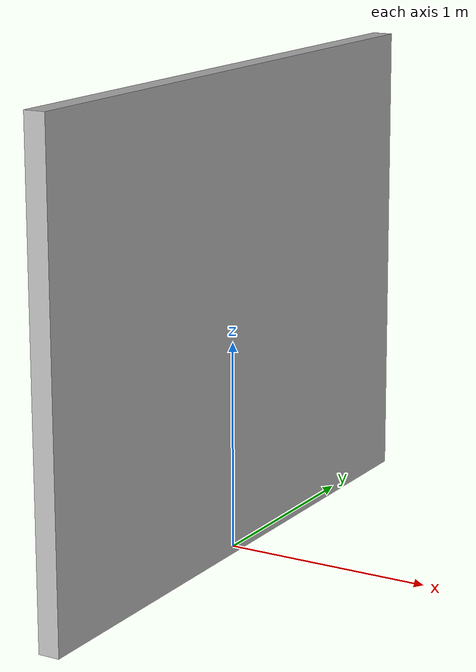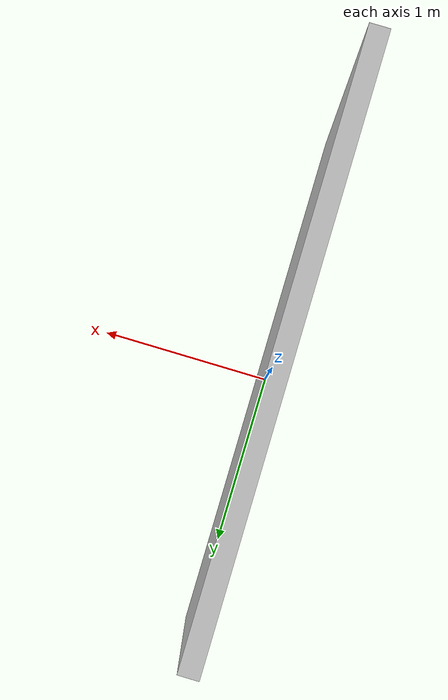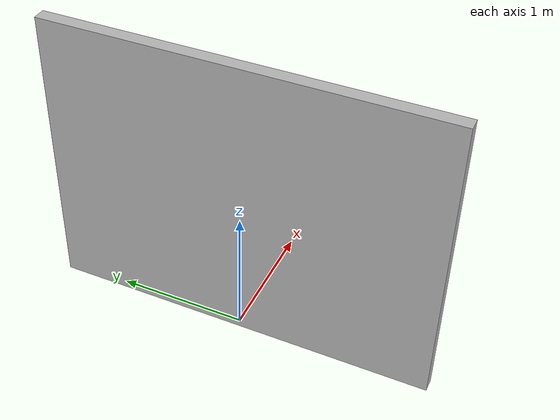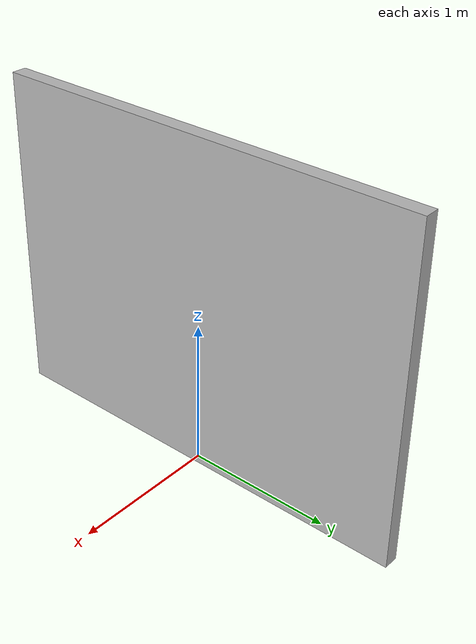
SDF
<?xml version="1.0" ?>
<sdf version="1.6">
  <model name="backwall">
  <pose>0 0 1.143 0 0 0</pose>
  <static>true</static>
    <link name="link">
      <inertial>
        <mass>10.0</mass>
        <inertia>
          <ixx>11.80741068</ixx>
          <ixy>0.0</ixy>
          <ixz>0.0</ixz>
          <iyy>4.3459784048</iyy>
          <iyz>0.0</iyz>
          <izz>7.478567724800001</izz>
        </inertia>
      </inertial>
      <collision name="collision">
        <geometry>
          <box>
            <size>0.1016 3.0 2.286</size>
          </box>
        </geometry>
      </collision>
      <visual name="visual">
        <geometry>
          <box>
            <size>0.1016 3.0 2.286</size>
          </box>
        </geometry>
        <material>
            <script>
                <uri>model://backwall/materials/scripts</uri>
                <uri>model://backwall/materials/textures</uri>
                <name>backwall/wall</name>
            </script>
        </material>
      </visual>
    </link>
  </model>
</sdf>
